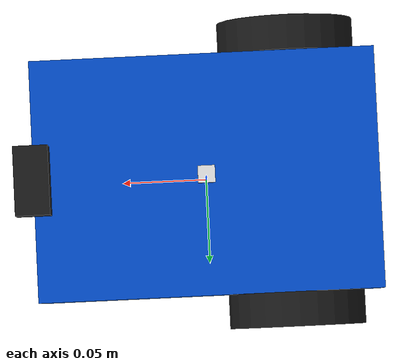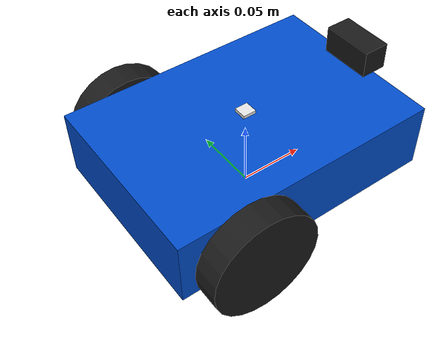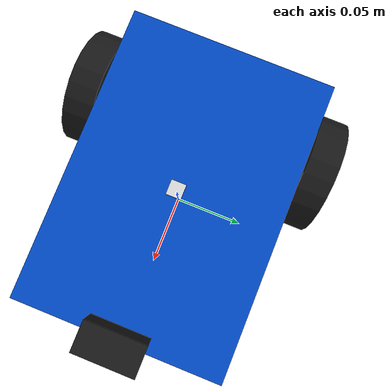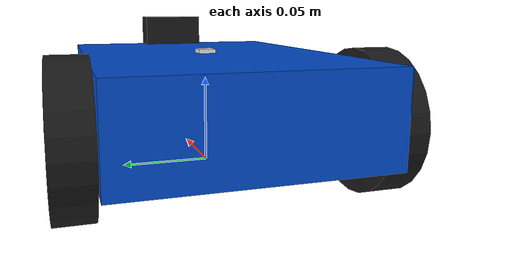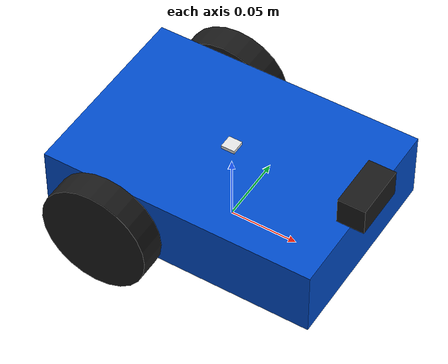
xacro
<?xml version="1.0"?>
<robot name="jr_bot" xmlns:xacro="http://www.ros.org/wiki/xacro">

    <xacro:include filename="$(find jr_bot_description)/urdf/jr_bot.ros2_control.xacro" />

    <xacro:jr_bot_ros2_control device_addr="/dev/ttyACM0" />

    <material name="black">
        <color rgba="0.1 0.1 0.1 1.0"/>
    </material>
    <material name="blue">
        <color rgba="0.0 0.3 0.8 1.0"/>
    </material>
    <material name="white">
        <color rgba="0.9 0.9 0.9 1.0"/>
    </material>

    <link name="base_footprint" />

    <link name="base_link">
        <visual>
            <geometry>
                <box size="0.20 0.14 0.05"/> </geometry>
            <material name="blue"/>
        </visual>
        <collision>
            <geometry>
                <box size="0.20 0.14 0.05"/>
            </geometry>
        </collision>
        <inertial>
            <mass value="1.0"/>
            <inertia ixx="0.00184" iyy="0.00354" izz="0.00496" ixy="0.0" iyz="0.0" ixz="0.0"/>
        </inertial>
    </link>

    <joint name="base_footprint_to_base_link" type="fixed">
        <parent link="base_footprint" />
        <child link="base_link" />
        <origin xyz="0 0 0.04" rpy="0 0 0" /> </joint>

    <link name="left_wheel">
        <visual>
            <geometry>
                <cylinder radius="0.04" length="0.02"/>
            </geometry>
            <material name="black"/>
        </visual>
        <collision>
            <geometry>
                <cylinder radius="0.04" length="0.02"/>
            </geometry>
        </collision>
        <inertial>
            <mass value="0.1"/>
            <inertia ixx="4.3e-05" iyy="4.3e-05" izz="8e-05" ixy="0.0" iyz="0.0" ixz="0.0"/>
        </inertial>
    </link>

    <joint name="left_wheel_joint" type="continuous">
        <parent link="base_link"/>
        <child link="left_wheel"/>
        <origin xyz="-0.05 0.08 -0.01" rpy="-1.5707 0 0"/>
        <axis xyz="0 0 1"/>
    </joint>

    <link name="right_wheel">
        <visual>
            <geometry>
                <cylinder radius="0.04" length="0.02"/>
            </geometry>
            <material name="black"/>
        </visual>
        <collision>
            <geometry>
                <cylinder radius="0.04" length="0.02"/>
            </geometry>
        </collision>
        <inertial>
            <mass value="0.1"/>
            <inertia ixx="4.3e-05" iyy="4.3e-05" izz="8e-05" ixy="0.0" iyz="0.0" ixz="0.0"/>
        </inertial>
    </link>

    <joint name="right_wheel_joint" type="continuous">
        <parent link="base_link"/>
        <child link="right_wheel"/>
        <origin xyz="-0.05 -0.08 -0.01" rpy="1.5707 0 0"/>
        <axis xyz="0 0 -1"/>
    </joint>

    <link name="caster_wheel">
        <visual>
            <geometry>
                <sphere radius="0.02"/>
            </geometry>
            <material name="white"/>
        </visual>
        <collision>
            <geometry>
                <sphere radius="0.02"/>
            </geometry>
        </collision>
        <inertial>
            <mass value="0.05"/>
            <inertia ixx="8e-06" iyy="8e-06" izz="8e-06" ixy="0.0" iyz="0.0" ixz="0.0"/>
        </inertial>
    </link>

    <joint name="caster_wheel_joint" type="fixed">
        <parent link="base_link"/>
        <child link="caster_wheel"/>
        <origin xyz="0.08 0 -0.02" rpy="0 0 0"/>
    </joint>

    <link name="tof_link">
        <visual>
            <geometry>
                <box size="0.02 0.04 0.02"/>
            </geometry>
            <material name="black"/>
        </visual>
    </link>

    <joint name="tof_joint" type="fixed">
        <parent link="base_link"/>
        <child link="tof_link"/>
        <origin xyz="0.10 0 0.035" rpy="0 0 0"/>
    </joint>

    <link name="tof_distance_link" />

    <joint name="tof_sweep_distance" type="prismatic">
        <parent link="tof_link"/>
        <child link="tof_distance_link"/>
        <axis xyz="1 0 0"/>
        <limit lower="0.0" upper="10.0" effort="0" velocity="0"/>
    </joint>

    <link name="tof_angle_link" />

    <joint name="tof_sweep_angle" type="continuous">
        <parent link="tof_link"/>
        <child link="tof_angle_link"/>
        <axis xyz="0 0 1"/>
    </joint>

    <link name="imu_link">
        <visual>
            <geometry>
                <box size="0.01 0.01 0.005"/>
            </geometry>
            <material name="white"/>
        </visual>
    </link>

    <joint name="imu_joint" type="fixed">
        <parent link="base_link"/>
        <child link="imu_link"/>
        <origin xyz="0 0 0.025" rpy="0 0 0"/>
    </joint>

</robot>
